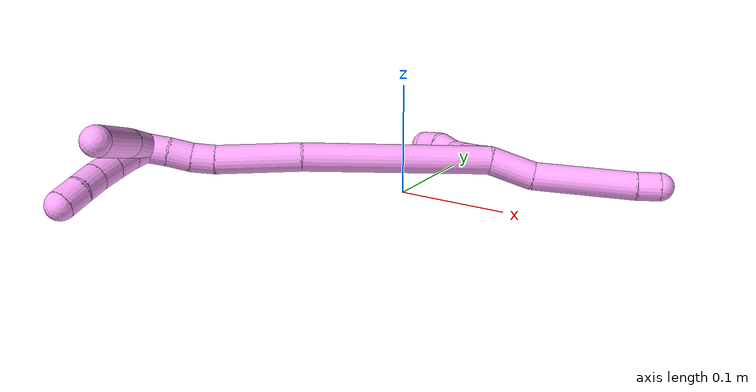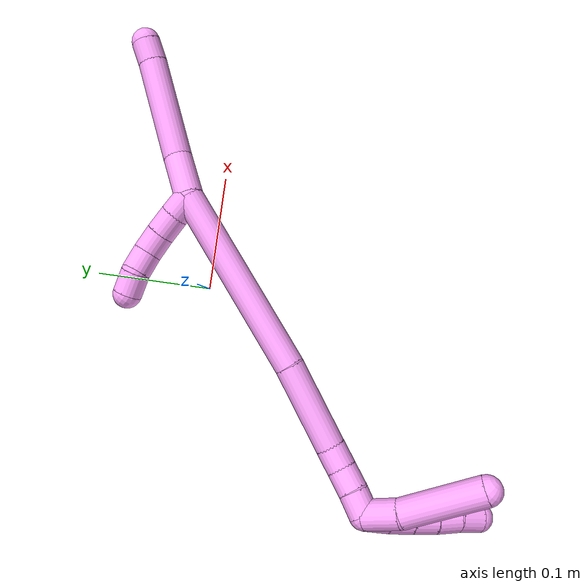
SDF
<sdf version="1.7">
 <world name="default">
  <model name="4">
   <static>0</static>
   <link name="4">
    <collision name="collision-cylinder-e_1_2_8">
     <pose>0.01948 -0.001433 0.005572 0.251714 1.2836 0.188557</pose>
     <geometry><cylinder><radius>0.0125</radius><length>0.040623</length></cylinder></geometry>
     <surface>
      <friction><ode><mu>1.16</mu><mu2>1.16</mu2><slip1>0</slip1><slip2>0</slip2></ode></friction>
      <contact><ode><kp>1e+06</kp><kd>1</kd><max_vel>0</max_vel><min_depth>0.001</min_depth></ode></contact>
     </surface>
    </collision>
    <visual name="visual-cylinder-e_1_2_8">
     <pose>0.01948 -0.001433 0.005572 0.251714 1.2836 0.188557</pose>
     <geometry><cylinder><radius>0.0125</radius><length>0.040623</length></cylinder></geometry>
     <material><ambient>1 0.65098 0.996078 1</ambient></material>
    </visual>
    <collision name="collision-cylinder-e_2_8_9">
     <pose>0.078421 0.003282 0.031157 -0.298046 1.08303 -0.180123</pose>
     <geometry><cylinder><radius>0.0125</radius><length>0.089343</length></cylinder></geometry>
     <surface>
      <friction><ode><mu>1.16</mu><mu2>1.16</mu2><slip1>0</slip1><slip2>0</slip2></ode></friction>
      <contact><ode><kp>1e+06</kp><kd>1</kd><max_vel>0</max_vel><min_depth>0.001</min_depth></ode></contact>
     </surface>
    </collision>
    <visual name="visual-cylinder-e_2_8_9">
     <pose>0.078421 0.003282 0.031157 -0.298046 1.08303 -0.180123</pose>
     <geometry><cylinder><radius>0.0125</radius><length>0.089343</length></cylinder></geometry>
     <material><ambient>1 0.65098 0.996078 1</ambient></material>
    </visual>
    <collision name="collision-cylinder-e_3_9_6">
     <pose>0.126669 0.011586 0.05547 -0.464871 1.06981 -0.278701</pose>
     <geometry><cylinder><radius>0.0125</radius><length>0.020034</length></cylinder></geometry>
     <surface>
      <friction><ode><mu>1.16</mu><mu2>1.16</mu2><slip1>0</slip1><slip2>0</slip2></ode></friction>
      <contact><ode><kp>1e+06</kp><kd>1</kd><max_vel>0</max_vel><min_depth>0.001</min_depth></ode></contact>
     </surface>
    </collision>
    <visual name="visual-cylinder-e_3_9_6">
     <pose>0.126669 0.011586 0.05547 -0.464871 1.06981 -0.278701</pose>
     <geometry><cylinder><radius>0.0125</radius><length>0.020034</length></cylinder></geometry>
     <material><ambient>1 0.65098 0.996078 1</ambient></material>
    </visual>
    <collision name="collision-cylinder-e_1_2_10">
     <pose>-0.001393 0.001958 -0.009707 -2.94252 -0.139732 1.22244</pose>
     <geometry><cylinder><radius>0.0125</radius><length>0.02</length></cylinder></geometry>
     <surface>
      <friction><ode><mu>1.16</mu><mu2>1.16</mu2><slip1>0</slip1><slip2>0</slip2></ode></friction>
      <contact><ode><kp>1e+06</kp><kd>1</kd><max_vel>0</max_vel><min_depth>0.001</min_depth></ode></contact>
     </surface>
    </collision>
    <visual name="visual-cylinder-e_1_2_10">
     <pose>-0.001393 0.001958 -0.009707 -2.94252 -0.139732 1.22244</pose>
     <geometry><cylinder><radius>0.0125</radius><length>0.02</length></cylinder></geometry>
     <material><ambient>1 0.65098 0.996078 1</ambient></material>
    </visual>
    <collision name="collision-cylinder-e_2_10_11">
     <pose>-0.004737 0.006155 -0.028963 -2.91133 -0.196381 1.41113</pose>
     <geometry><cylinder><radius>0.0125</radius><length>0.02</length></cylinder></geometry>
     <surface>
      <friction><ode><mu>1.16</mu><mu2>1.16</mu2><slip1>0</slip1><slip2>0</slip2></ode></friction>
      <contact><ode><kp>1e+06</kp><kd>1</kd><max_vel>0</max_vel><min_depth>0.001</min_depth></ode></contact>
     </surface>
    </collision>
    <visual name="visual-cylinder-e_2_10_11">
     <pose>-0.004737 0.006155 -0.028963 -2.91133 -0.196381 1.41113</pose>
     <geometry><cylinder><radius>0.0125</radius><length>0.02</length></cylinder></geometry>
     <material><ambient>1 0.65098 0.996078 1</ambient></material>
    </visual>
    <collision name="collision-cylinder-e_3_11_12">
     <pose>-0.009203 0.010577 -0.047941 -2.91402 -0.254206 1.68233</pose>
     <geometry><cylinder><radius>0.0125</radius><length>0.02</length></cylinder></geometry>
     <surface>
      <friction><ode><mu>1.16</mu><mu2>1.16</mu2><slip1>0</slip1><slip2>0</slip2></ode></friction>
      <contact><ode><kp>1e+06</kp><kd>1</kd><max_vel>0</max_vel><min_depth>0.001</min_depth></ode></contact>
     </surface>
    </collision>
    <visual name="visual-cylinder-e_3_11_12">
     <pose>-0.009203 0.010577 -0.047941 -2.91402 -0.254206 1.68233</pose>
     <geometry><cylinder><radius>0.0125</radius><length>0.02</length></cylinder></geometry>
     <material><ambient>1 0.65098 0.996078 1</ambient></material>
    </visual>
    <collision name="collision-cylinder-e_4_12_13">
     <pose>-0.016558 0.01675 -0.065158 -2.66816 -0.505237 1.63842</pose>
     <geometry><cylinder><radius>0.0125</radius><length>0.02</length></cylinder></geometry>
     <surface>
      <friction><ode><mu>1.16</mu><mu2>1.16</mu2><slip1>0</slip1><slip2>0</slip2></ode></friction>
      <contact><ode><kp>1e+06</kp><kd>1</kd><max_vel>0</max_vel><min_depth>0.001</min_depth></ode></contact>
     </surface>
    </collision>
    <visual name="visual-cylinder-e_4_12_13">
     <pose>-0.016558 0.01675 -0.065158 -2.66816 -0.505237 1.63842</pose>
     <geometry><cylinder><radius>0.0125</radius><length>0.02</length></cylinder></geometry>
     <material><ambient>1 0.65098 0.996078 1</ambient></material>
    </visual>
    <collision name="collision-cylinder-e_5_13_5">
     <pose>-0.025772 0.0215 -0.081906 -3.05704 -0.452777 2.77834</pose>
     <geometry><cylinder><radius>0.0125</radius><length>0.02</length></cylinder></geometry>
     <surface>
      <friction><ode><mu>1.16</mu><mu2>1.16</mu2><slip1>0</slip1><slip2>0</slip2></ode></friction>
      <contact><ode><kp>1e+06</kp><kd>1</kd><max_vel>0</max_vel><min_depth>0.001</min_depth></ode></contact>
     </surface>
    </collision>
    <visual name="visual-cylinder-e_5_13_5">
     <pose>-0.025772 0.0215 -0.081906 -3.05704 -0.452777 2.77834</pose>
     <geometry><cylinder><radius>0.0125</radius><length>0.02</length></cylinder></geometry>
     <material><ambient>1 0.65098 0.996078 1</ambient></material>
    </visual>
    <collision name="collision-cylinder-e_1_2_14">
     <pose>-0.077353 -0.023636 -0.01871 2.24038 -1.1992 -1.90973</pose>
     <geometry><cylinder><radius>0.0125</radius><length>0.166038</length></cylinder></geometry>
     <surface>
      <friction><ode><mu>1.16</mu><mu2>1.16</mu2><slip1>0</slip1><slip2>0</slip2></ode></friction>
      <contact><ode><kp>1e+06</kp><kd>1</kd><max_vel>0</max_vel><min_depth>0.001</min_depth></ode></contact>
     </surface>
    </collision>
    <visual name="visual-cylinder-e_1_2_14">
     <pose>-0.077353 -0.023636 -0.01871 2.24038 -1.1992 -1.90973</pose>
     <geometry><cylinder><radius>0.0125</radius><length>0.166038</length></cylinder></geometry>
     <material><ambient>1 0.65098 0.996078 1</ambient></material>
    </visual>
    <collision name="collision-cylinder-e_2_14_15">
     <pose>-0.187902 -0.058644 -0.049073 2.36839 -1.11477 -1.98449</pose>
     <geometry><cylinder><radius>0.0125</radius><length>0.073951</length></cylinder></geometry>
     <surface>
      <friction><ode><mu>1.16</mu><mu2>1.16</mu2><slip1>0</slip1><slip2>0</slip2></ode></friction>
      <contact><ode><kp>1e+06</kp><kd>1</kd><max_vel>0</max_vel><min_depth>0.001</min_depth></ode></contact>
     </surface>
    </collision>
    <visual name="visual-cylinder-e_2_14_15">
     <pose>-0.187902 -0.058644 -0.049073 2.36839 -1.11477 -1.98449</pose>
     <geometry><cylinder><radius>0.0125</radius><length>0.073951</length></cylinder></geometry>
     <material><ambient>1 0.65098 0.996078 1</ambient></material>
    </visual>
    <collision name="collision-cylinder-e_3_15_16">
     <pose>-0.230554 -0.072066 -0.063264 2.46241 -1.2386 -2.22138</pose>
     <geometry><cylinder><radius>0.0125</radius><length>0.020002</length></cylinder></geometry>
     <surface>
      <friction><ode><mu>1.16</mu><mu2>1.16</mu2><slip1>0</slip1><slip2>0</slip2></ode></friction>
      <contact><ode><kp>1e+06</kp><kd>1</kd><max_vel>0</max_vel><min_depth>0.001</min_depth></ode></contact>
     </surface>
    </collision>
    <visual name="visual-cylinder-e_3_15_16">
     <pose>-0.230554 -0.072066 -0.063264 2.46241 -1.2386 -2.22138</pose>
     <geometry><cylinder><radius>0.0125</radius><length>0.020002</length></cylinder></geometry>
     <material><ambient>1 0.65098 0.996078 1</ambient></material>
    </visual>
    <collision name="collision-cylinder-e_4_16_17">
     <pose>-0.249835 -0.074849 -0.067528 2.73928 -1.38217 -2.65819</pose>
     <geometry><cylinder><radius>0.0125</radius><length>0.020007</length></cylinder></geometry>
     <surface>
      <friction><ode><mu>1.16</mu><mu2>1.16</mu2><slip1>0</slip1><slip2>0</slip2></ode></friction>
      <contact><ode><kp>1e+06</kp><kd>1</kd><max_vel>0</max_vel><min_depth>0.001</min_depth></ode></contact>
     </surface>
    </collision>
    <visual name="visual-cylinder-e_4_16_17">
     <pose>-0.249835 -0.074849 -0.067528 2.73928 -1.38217 -2.65819</pose>
     <geometry><cylinder><radius>0.0125</radius><length>0.020007</length></cylinder></geometry>
     <material><ambient>1 0.65098 0.996078 1</ambient></material>
    </visual>
    <collision name="collision-cylinder-e_5_17_1">
     <pose>-0.269266 -0.076704 -0.071805 2.72778 -1.28847 -2.59659</pose>
     <geometry><cylinder><radius>0.0125</radius><length>0.020001</length></cylinder></geometry>
     <surface>
      <friction><ode><mu>1.16</mu><mu2>1.16</mu2><slip1>0</slip1><slip2>0</slip2></ode></friction>
      <contact><ode><kp>1e+06</kp><kd>1</kd><max_vel>0</max_vel><min_depth>0.001</min_depth></ode></contact>
     </surface>
    </collision>
    <visual name="visual-cylinder-e_5_17_1">
     <pose>-0.269266 -0.076704 -0.071805 2.72778 -1.28847 -2.59659</pose>
     <geometry><cylinder><radius>0.0125</radius><length>0.020001</length></cylinder></geometry>
     <material><ambient>1 0.65098 0.996078 1</ambient></material>
    </visual>
    <collision name="collision-cylinder-e_1_1_18">
     <pose>-0.286754 -0.081246 -0.062231 0.27503 -0.559137 -0.079417</pose>
     <geometry><cylinder><radius>0.0125</radius><length>0.029722</length></cylinder></geometry>
     <surface>
      <friction><ode><mu>1.16</mu><mu2>1.16</mu2><slip1>0</slip1><slip2>0</slip2></ode></friction>
      <contact><ode><kp>1e+06</kp><kd>1</kd><max_vel>0</max_vel><min_depth>0.001</min_depth></ode></contact>
     </surface>
    </collision>
    <visual name="visual-cylinder-e_1_1_18">
     <pose>-0.286754 -0.081246 -0.062231 0.27503 -0.559137 -0.079417</pose>
     <geometry><cylinder><radius>0.0125</radius><length>0.029722</length></cylinder></geometry>
     <material><ambient>1 0.65098 0.996078 1</ambient></material>
    </visual>
    <collision name="collision-cylinder-e_2_18_4">
     <pose>-0.306611 -0.09488 -0.018689 0.314317 -0.347731 -0.055651</pose>
     <geometry><cylinder><radius>0.0125</radius><length>0.070278</length></cylinder></geometry>
     <surface>
      <friction><ode><mu>1.16</mu><mu2>1.16</mu2><slip1>0</slip1><slip2>0</slip2></ode></friction>
      <contact><ode><kp>1e+06</kp><kd>1</kd><max_vel>0</max_vel><min_depth>0.001</min_depth></ode></contact>
     </surface>
    </collision>
    <visual name="visual-cylinder-e_2_18_4">
     <pose>-0.306611 -0.09488 -0.018689 0.314317 -0.347731 -0.055651</pose>
     <geometry><cylinder><radius>0.0125</radius><length>0.070278</length></cylinder></geometry>
     <material><ambient>1 0.65098 0.996078 1</ambient></material>
    </visual>
    <collision name="collision-cylinder-e_1_1_19">
     <pose>-0.284445 -0.084748 -0.069775 0.986325 -0.591302 -0.324516</pose>
     <geometry><cylinder><radius>0.0125</radius><length>0.02</length></cylinder></geometry>
     <surface>
      <friction><ode><mu>1.16</mu><mu2>1.16</mu2><slip1>0</slip1><slip2>0</slip2></ode></friction>
      <contact><ode><kp>1e+06</kp><kd>1</kd><max_vel>0</max_vel><min_depth>0.001</min_depth></ode></contact>
     </surface>
    </collision>
    <visual name="visual-cylinder-e_1_1_19">
     <pose>-0.284445 -0.084748 -0.069775 0.986325 -0.591302 -0.324516</pose>
     <geometry><cylinder><radius>0.0125</radius><length>0.02</length></cylinder></geometry>
     <material><ambient>1 0.65098 0.996078 1</ambient></material>
    </visual>
    <collision name="collision-cylinder-e_2_19_20">
     <pose>-0.294984 -0.099023 -0.060577 1.00994 -0.519495 -0.291712</pose>
     <geometry><cylinder><radius>0.0125</radius><length>0.02</length></cylinder></geometry>
     <surface>
      <friction><ode><mu>1.16</mu><mu2>1.16</mu2><slip1>0</slip1><slip2>0</slip2></ode></friction>
      <contact><ode><kp>1e+06</kp><kd>1</kd><max_vel>0</max_vel><min_depth>0.001</min_depth></ode></contact>
     </surface>
    </collision>
    <visual name="visual-cylinder-e_2_19_20">
     <pose>-0.294984 -0.099023 -0.060577 1.00994 -0.519495 -0.291712</pose>
     <geometry><cylinder><radius>0.0125</radius><length>0.02</length></cylinder></geometry>
     <material><ambient>1 0.65098 0.996078 1</ambient></material>
    </visual>
    <collision name="collision-cylinder-e_3_20_21">
     <pose>-0.304609 -0.113831 -0.051199 1.00262 -0.48485 -0.269391</pose>
     <geometry><cylinder><radius>0.0125</radius><length>0.02</length></cylinder></geometry>
     <surface>
      <friction><ode><mu>1.16</mu><mu2>1.16</mu2><slip1>0</slip1><slip2>0</slip2></ode></friction>
      <contact><ode><kp>1e+06</kp><kd>1</kd><max_vel>0</max_vel><min_depth>0.001</min_depth></ode></contact>
     </surface>
    </collision>
    <visual name="visual-cylinder-e_3_20_21">
     <pose>-0.304609 -0.113831 -0.051199 1.00262 -0.48485 -0.269391</pose>
     <geometry><cylinder><radius>0.0125</radius><length>0.02</length></cylinder></geometry>
     <material><ambient>1 0.65098 0.996078 1</ambient></material>
    </visual>
    <collision name="collision-cylinder-e_4_21_22">
     <pose>-0.3133 -0.12892 -0.041386 0.986042 -0.414888 -0.225206</pose>
     <geometry><cylinder><radius>0.0125</radius><length>0.02</length></cylinder></geometry>
     <surface>
      <friction><ode><mu>1.16</mu><mu2>1.16</mu2><slip1>0</slip1><slip2>0</slip2></ode></friction>
      <contact><ode><kp>1e+06</kp><kd>1</kd><max_vel>0</max_vel><min_depth>0.001</min_depth></ode></contact>
     </surface>
    </collision>
    <visual name="visual-cylinder-e_4_21_22">
     <pose>-0.3133 -0.12892 -0.041386 0.986042 -0.414888 -0.225206</pose>
     <geometry><cylinder><radius>0.0125</radius><length>0.02</length></cylinder></geometry>
     <material><ambient>1 0.65098 0.996078 1</ambient></material>
    </visual>
    <collision name="collision-cylinder-e_5_22_3">
     <pose>-0.321654 -0.144746 -0.032572 1.14044 -0.44703 -0.289502</pose>
     <geometry><cylinder><radius>0.0125</radius><length>0.02</length></cylinder></geometry>
     <surface>
      <friction><ode><mu>1.16</mu><mu2>1.16</mu2><slip1>0</slip1><slip2>0</slip2></ode></friction>
      <contact><ode><kp>1e+06</kp><kd>1</kd><max_vel>0</max_vel><min_depth>0.001</min_depth></ode></contact>
     </surface>
    </collision>
    <visual name="visual-cylinder-e_5_22_3">
     <pose>-0.321654 -0.144746 -0.032572 1.14044 -0.44703 -0.289502</pose>
     <geometry><cylinder><radius>0.0125</radius><length>0.02</length></cylinder></geometry>
     <material><ambient>1 0.65098 0.996078 1</ambient></material>
    </visual>
    <collision name="collision-sphere-3">
     <pose>-0.325977 -0.152941 -0.02881 0 -0 0</pose>
     <geometry><sphere><radius>0.0125</radius></sphere></geometry>
     <surface>
      <friction><ode><mu>1.16</mu><mu2>1.16</mu2><slip1>0</slip1><slip2>0</slip2></ode></friction>
      <contact><ode><kp>1e+06</kp><kd>1</kd><max_vel>0</max_vel><min_depth>0.001</min_depth></ode></contact>
     </surface>
    </collision>
    <visual name="visual-sphere-3">
     <pose>-0.325977 -0.152941 -0.02881 0 -0 0</pose>
     <geometry><sphere><radius>0.0125</radius></sphere></geometry>
     <material><ambient>1 0.65098 0.996078 1</ambient></material>
    </visual>
    <collision name="collision-sphere-22">
     <pose>-0.317331 -0.136551 -0.036334 0 -0 0</pose>
     <geometry><sphere><radius>0.0125</radius></sphere></geometry>
     <surface>
      <friction><ode><mu>1.16</mu><mu2>1.16</mu2><slip1>0</slip1><slip2>0</slip2></ode></friction>
      <contact><ode><kp>1e+06</kp><kd>1</kd><max_vel>0</max_vel><min_depth>0.001</min_depth></ode></contact>
     </surface>
    </collision>
    <visual name="visual-sphere-22">
     <pose>-0.317331 -0.136551 -0.036334 0 -0 0</pose>
     <geometry><sphere><radius>0.0125</radius></sphere></geometry>
     <material><ambient>1 0.65098 0.996078 1</ambient></material>
    </visual>
    <collision name="collision-sphere-21">
     <pose>-0.30927 -0.121289 -0.046438 0 -0 0</pose>
     <geometry><sphere><radius>0.0125</radius></sphere></geometry>
     <surface>
      <friction><ode><mu>1.16</mu><mu2>1.16</mu2><slip1>0</slip1><slip2>0</slip2></ode></friction>
      <contact><ode><kp>1e+06</kp><kd>1</kd><max_vel>0</max_vel><min_depth>0.001</min_depth></ode></contact>
     </surface>
    </collision>
    <visual name="visual-sphere-21">
     <pose>-0.30927 -0.121289 -0.046438 0 -0 0</pose>
     <geometry><sphere><radius>0.0125</radius></sphere></geometry>
     <material><ambient>1 0.65098 0.996078 1</ambient></material>
    </visual>
    <collision name="collision-sphere-20">
     <pose>-0.299948 -0.106374 -0.055959 0 -0 0</pose>
     <geometry><sphere><radius>0.0125</radius></sphere></geometry>
     <surface>
      <friction><ode><mu>1.16</mu><mu2>1.16</mu2><slip1>0</slip1><slip2>0</slip2></ode></friction>
      <contact><ode><kp>1e+06</kp><kd>1</kd><max_vel>0</max_vel><min_depth>0.001</min_depth></ode></contact>
     </surface>
    </collision>
    <visual name="visual-sphere-20">
     <pose>-0.299948 -0.106374 -0.055959 0 -0 0</pose>
     <geometry><sphere><radius>0.0125</radius></sphere></geometry>
     <material><ambient>1 0.65098 0.996078 1</ambient></material>
    </visual>
    <collision name="collision-sphere-19">
     <pose>-0.290019 -0.091672 -0.065194 0 -0 0</pose>
     <geometry><sphere><radius>0.0125</radius></sphere></geometry>
     <surface>
      <friction><ode><mu>1.16</mu><mu2>1.16</mu2><slip1>0</slip1><slip2>0</slip2></ode></friction>
      <contact><ode><kp>1e+06</kp><kd>1</kd><max_vel>0</max_vel><min_depth>0.001</min_depth></ode></contact>
     </surface>
    </collision>
    <visual name="visual-sphere-19">
     <pose>-0.290019 -0.091672 -0.065194 0 -0 0</pose>
     <geometry><sphere><radius>0.0125</radius></sphere></geometry>
     <material><ambient>1 0.65098 0.996078 1</ambient></material>
    </visual>
    <collision name="collision-sphere-11">
     <pose>-0.006688 0.008393 -0.038512 0 -0 0</pose>
     <geometry><sphere><radius>0.0125</radius></sphere></geometry>
     <surface>
      <friction><ode><mu>1.16</mu><mu2>1.16</mu2><slip1>0</slip1><slip2>0</slip2></ode></friction>
      <contact><ode><kp>1e+06</kp><kd>1</kd><max_vel>0</max_vel><min_depth>0.001</min_depth></ode></contact>
     </surface>
    </collision>
    <visual name="visual-sphere-11">
     <pose>-0.006688 0.008393 -0.038512 0 -0 0</pose>
     <geometry><sphere><radius>0.0125</radius></sphere></geometry>
     <material><ambient>1 0.65098 0.996078 1</ambient></material>
    </visual>
    <collision name="collision-sphere-10">
     <pose>-0.002786 0.003917 -0.019414 0 -0 0</pose>
     <geometry><sphere><radius>0.0125</radius></sphere></geometry>
     <surface>
      <friction><ode><mu>1.16</mu><mu2>1.16</mu2><slip1>0</slip1><slip2>0</slip2></ode></friction>
      <contact><ode><kp>1e+06</kp><kd>1</kd><max_vel>0</max_vel><min_depth>0.001</min_depth></ode></contact>
     </surface>
    </collision>
    <visual name="visual-sphere-10">
     <pose>-0.002786 0.003917 -0.019414 0 -0 0</pose>
     <geometry><sphere><radius>0.0125</radius></sphere></geometry>
     <material><ambient>1 0.65098 0.996078 1</ambient></material>
    </visual>
    <collision name="collision-sphere-6">
     <pose>0.135455 0.013743 0.05977 0 -0 0</pose>
     <geometry><sphere><radius>0.0125</radius></sphere></geometry>
     <surface>
      <friction><ode><mu>1.16</mu><mu2>1.16</mu2><slip1>0</slip1><slip2>0</slip2></ode></friction>
      <contact><ode><kp>1e+06</kp><kd>1</kd><max_vel>0</max_vel><min_depth>0.001</min_depth></ode></contact>
     </surface>
    </collision>
    <visual name="visual-sphere-6">
     <pose>0.135455 0.013743 0.05977 0 -0 0</pose>
     <geometry><sphere><radius>0.0125</radius></sphere></geometry>
     <material><ambient>1 0.65098 0.996078 1</ambient></material>
    </visual>
    <collision name="collision-sphere-9">
     <pose>0.117884 0.00943 0.051169 0 -0 0</pose>
     <geometry><sphere><radius>0.0125</radius></sphere></geometry>
     <surface>
      <friction><ode><mu>1.16</mu><mu2>1.16</mu2><slip1>0</slip1><slip2>0</slip2></ode></friction>
      <contact><ode><kp>1e+06</kp><kd>1</kd><max_vel>0</max_vel><min_depth>0.001</min_depth></ode></contact>
     </surface>
    </collision>
    <visual name="visual-sphere-9">
     <pose>0.117884 0.00943 0.051169 0 -0 0</pose>
     <geometry><sphere><radius>0.0125</radius></sphere></geometry>
     <material><ambient>1 0.65098 0.996078 1</ambient></material>
    </visual>
    <collision name="collision-sphere-2">
     <geometry><sphere><radius>0.0125</radius></sphere></geometry>
     <surface>
      <friction><ode><mu>1.16</mu><mu2>1.16</mu2><slip1>0</slip1><slip2>0</slip2></ode></friction>
      <contact><ode><kp>1e+06</kp><kd>1</kd><max_vel>0</max_vel><min_depth>0.001</min_depth></ode></contact>
     </surface>
    </collision>
    <visual name="visual-sphere-2">
     <geometry><sphere><radius>0.0125</radius></sphere></geometry>
     <material><ambient>1 0.65098 0.996078 1</ambient></material>
    </visual>
    <collision name="collision-sphere-8">
     <pose>0.038959 -0.002866 0.011144 0 -0 0</pose>
     <geometry><sphere><radius>0.0125</radius></sphere></geometry>
     <surface>
      <friction><ode><mu>1.16</mu><mu2>1.16</mu2><slip1>0</slip1><slip2>0</slip2></ode></friction>
      <contact><ode><kp>1e+06</kp><kd>1</kd><max_vel>0</max_vel><min_depth>0.001</min_depth></ode></contact>
     </surface>
    </collision>
    <visual name="visual-sphere-8">
     <pose>0.038959 -0.002866 0.011144 0 -0 0</pose>
     <geometry><sphere><radius>0.0125</radius></sphere></geometry>
     <material><ambient>1 0.65098 0.996078 1</ambient></material>
    </visual>
    <collision name="collision-sphere-12">
     <pose>-0.011718 0.012761 -0.05737 0 -0 0</pose>
     <geometry><sphere><radius>0.0125</radius></sphere></geometry>
     <surface>
      <friction><ode><mu>1.16</mu><mu2>1.16</mu2><slip1>0</slip1><slip2>0</slip2></ode></friction>
      <contact><ode><kp>1e+06</kp><kd>1</kd><max_vel>0</max_vel><min_depth>0.001</min_depth></ode></contact>
     </surface>
    </collision>
    <visual name="visual-sphere-12">
     <pose>-0.011718 0.012761 -0.05737 0 -0 0</pose>
     <geometry><sphere><radius>0.0125</radius></sphere></geometry>
     <material><ambient>1 0.65098 0.996078 1</ambient></material>
    </visual>
    <collision name="collision-sphere-13">
     <pose>-0.021398 0.02074 -0.072946 0 -0 0</pose>
     <geometry><sphere><radius>0.0125</radius></sphere></geometry>
     <surface>
      <friction><ode><mu>1.16</mu><mu2>1.16</mu2><slip1>0</slip1><slip2>0</slip2></ode></friction>
      <contact><ode><kp>1e+06</kp><kd>1</kd><max_vel>0</max_vel><min_depth>0.001</min_depth></ode></contact>
     </surface>
    </collision>
    <visual name="visual-sphere-13">
     <pose>-0.021398 0.02074 -0.072946 0 -0 0</pose>
     <geometry><sphere><radius>0.0125</radius></sphere></geometry>
     <material><ambient>1 0.65098 0.996078 1</ambient></material>
    </visual>
    <collision name="collision-sphere-5">
     <pose>-0.030147 0.022259 -0.090867 0 -0 0</pose>
     <geometry><sphere><radius>0.0125</radius></sphere></geometry>
     <surface>
      <friction><ode><mu>1.16</mu><mu2>1.16</mu2><slip1>0</slip1><slip2>0</slip2></ode></friction>
      <contact><ode><kp>1e+06</kp><kd>1</kd><max_vel>0</max_vel><min_depth>0.001</min_depth></ode></contact>
     </surface>
    </collision>
    <visual name="visual-sphere-5">
     <pose>-0.030147 0.022259 -0.090867 0 -0 0</pose>
     <geometry><sphere><radius>0.0125</radius></sphere></geometry>
     <material><ambient>1 0.65098 0.996078 1</ambient></material>
    </visual>
    <collision name="collision-sphere-14">
     <pose>-0.154705 -0.047272 -0.037419 0 -0 0</pose>
     <geometry><sphere><radius>0.0125</radius></sphere></geometry>
     <surface>
      <friction><ode><mu>1.16</mu><mu2>1.16</mu2><slip1>0</slip1><slip2>0</slip2></ode></friction>
      <contact><ode><kp>1e+06</kp><kd>1</kd><max_vel>0</max_vel><min_depth>0.001</min_depth></ode></contact>
     </surface>
    </collision>
    <visual name="visual-sphere-14">
     <pose>-0.154705 -0.047272 -0.037419 0 -0 0</pose>
     <geometry><sphere><radius>0.0125</radius></sphere></geometry>
     <material><ambient>1 0.65098 0.996078 1</ambient></material>
    </visual>
    <collision name="collision-sphere-15">
     <pose>-0.2211 -0.070017 -0.060726 0 -0 0</pose>
     <geometry><sphere><radius>0.0125</radius></sphere></geometry>
     <surface>
      <friction><ode><mu>1.16</mu><mu2>1.16</mu2><slip1>0</slip1><slip2>0</slip2></ode></friction>
      <contact><ode><kp>1e+06</kp><kd>1</kd><max_vel>0</max_vel><min_depth>0.001</min_depth></ode></contact>
     </surface>
    </collision>
    <visual name="visual-sphere-15">
     <pose>-0.2211 -0.070017 -0.060726 0 -0 0</pose>
     <geometry><sphere><radius>0.0125</radius></sphere></geometry>
     <material><ambient>1 0.65098 0.996078 1</ambient></material>
    </visual>
    <collision name="collision-sphere-16">
     <pose>-0.240008 -0.074115 -0.065802 0 -0 0</pose>
     <geometry><sphere><radius>0.0125</radius></sphere></geometry>
     <surface>
      <friction><ode><mu>1.16</mu><mu2>1.16</mu2><slip1>0</slip1><slip2>0</slip2></ode></friction>
      <contact><ode><kp>1e+06</kp><kd>1</kd><max_vel>0</max_vel><min_depth>0.001</min_depth></ode></contact>
     </surface>
    </collision>
    <visual name="visual-sphere-16">
     <pose>-0.240008 -0.074115 -0.065802 0 -0 0</pose>
     <geometry><sphere><radius>0.0125</radius></sphere></geometry>
     <material><ambient>1 0.65098 0.996078 1</ambient></material>
    </visual>
    <collision name="collision-sphere-17">
     <pose>-0.259661 -0.075584 -0.069254 0 -0 0</pose>
     <geometry><sphere><radius>0.0125</radius></sphere></geometry>
     <surface>
      <friction><ode><mu>1.16</mu><mu2>1.16</mu2><slip1>0</slip1><slip2>0</slip2></ode></friction>
      <contact><ode><kp>1e+06</kp><kd>1</kd><max_vel>0</max_vel><min_depth>0.001</min_depth></ode></contact>
     </surface>
    </collision>
    <visual name="visual-sphere-17">
     <pose>-0.259661 -0.075584 -0.069254 0 -0 0</pose>
     <geometry><sphere><radius>0.0125</radius></sphere></geometry>
     <material><ambient>1 0.65098 0.996078 1</ambient></material>
    </visual>
    <collision name="collision-sphere-1">
     <pose>-0.27887 -0.077824 -0.074356 0 -0 0</pose>
     <geometry><sphere><radius>0.0125</radius></sphere></geometry>
     <surface>
      <friction><ode><mu>1.16</mu><mu2>1.16</mu2><slip1>0</slip1><slip2>0</slip2></ode></friction>
      <contact><ode><kp>1e+06</kp><kd>1</kd><max_vel>0</max_vel><min_depth>0.001</min_depth></ode></contact>
     </surface>
    </collision>
    <visual name="visual-sphere-1">
     <pose>-0.27887 -0.077824 -0.074356 0 -0 0</pose>
     <geometry><sphere><radius>0.0125</radius></sphere></geometry>
     <material><ambient>1 0.65098 0.996078 1</ambient></material>
    </visual>
    <collision name="collision-sphere-18">
     <pose>-0.294637 -0.084667 -0.050107 0 -0 0</pose>
     <geometry><sphere><radius>0.0125</radius></sphere></geometry>
     <surface>
      <friction><ode><mu>1.16</mu><mu2>1.16</mu2><slip1>0</slip1><slip2>0</slip2></ode></friction>
      <contact><ode><kp>1e+06</kp><kd>1</kd><max_vel>0</max_vel><min_depth>0.001</min_depth></ode></contact>
     </surface>
    </collision>
    <visual name="visual-sphere-18">
     <pose>-0.294637 -0.084667 -0.050107 0 -0 0</pose>
     <geometry><sphere><radius>0.0125</radius></sphere></geometry>
     <material><ambient>1 0.65098 0.996078 1</ambient></material>
    </visual>
    <collision name="collision-sphere-4">
     <pose>-0.318585 -0.105094 0.012728 0 -0 0</pose>
     <geometry><sphere><radius>0.0125</radius></sphere></geometry>
     <surface>
      <friction><ode><mu>1.16</mu><mu2>1.16</mu2><slip1>0</slip1><slip2>0</slip2></ode></friction>
      <contact><ode><kp>1e+06</kp><kd>1</kd><max_vel>0</max_vel><min_depth>0.001</min_depth></ode></contact>
     </surface>
    </collision>
    <visual name="visual-sphere-4">
     <pose>-0.318585 -0.105094 0.012728 0 -0 0</pose>
     <geometry><sphere><radius>0.0125</radius></sphere></geometry>
     <material><ambient>1 0.65098 0.996078 1</ambient></material>
    </visual>
    <inertial>
     <pose>-0.124005 -0.042182 -0.026152 0 -0 0</pose>
     <mass>0.75</mass>
     <inertia>
      <ixx>-0.000156</ixx>
      <ixy>0</ixy>
      <ixz>0</ixz>
      <iyy>0.000331</iyy>
      <iyz>0</iyz>
      <izz>0.000483</izz>
     </inertia>
    </inertial>
   </link>
   <pose>0.074036 0.025315 0.036352 1.07587 0.420638 0.74403</pose>
  </model>
 </world>
</sdf>
